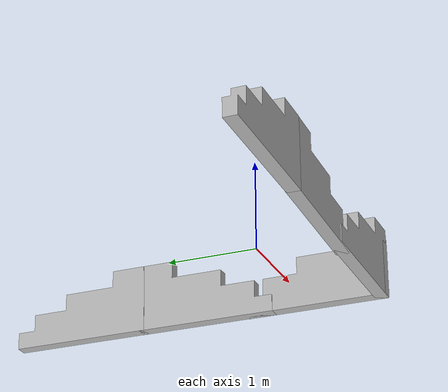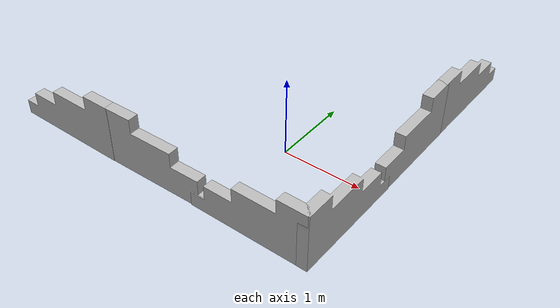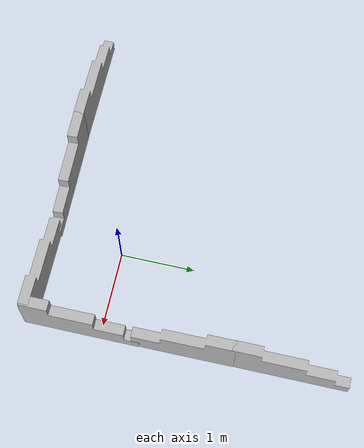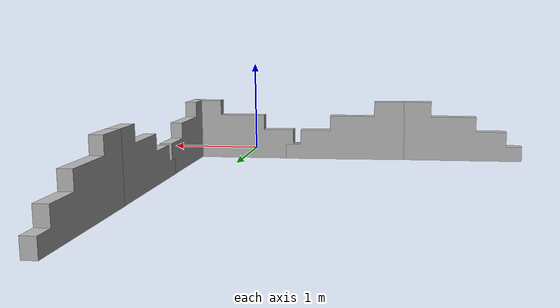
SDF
<?xml version='1.0'?>
<sdf version='1.7'>
  <model name='makefence'>
    <model name='block_wall'>
      <pose>0.442048 -1.01418 0 0 -0 0</pose>
      <static>1</static>
      <link name='blocks'>
        <collision name='collision'>
          <geometry>
            <mesh>
              <uri>model://drc_practice_block_wall/meshes/block_wall.dae</uri>
            </mesh>
          </geometry>
          <surface>
            <bounce>
              <restitution_coefficient>0</restitution_coefficient>
              <threshold>100000</threshold>
            </bounce>
            <friction>
              <ode>
                <mu>100</mu>
                <mu2>50</mu2>
              </ode>
            </friction>
            <contact>
              <ode>
                <soft_cfm>0</soft_cfm>
                <soft_erp>0.2</soft_erp>
                <max_vel>0</max_vel>
                <min_depth>0</min_depth>
              </ode>
            </contact>
          </surface>
        </collision>
        <visual name='visual'>
          <geometry>
            <mesh>
              <uri>model://drc_practice_block_wall/meshes/block_wall.dae</uri>
            </mesh>
          </geometry>
        </visual>
      </link>
    </model>
    <model name='block_wall_clone'>
      <pose>1.03036 -0.441285 0 0 0 -1.57363</pose>
      <static>1</static>
      <link name='blocks'>
        <collision name='collision'>
          <geometry>
            <mesh>
              <uri>model://drc_practice_block_wall/meshes/block_wall.dae</uri>
            </mesh>
          </geometry>
          <surface>
            <bounce>
              <restitution_coefficient>0</restitution_coefficient>
              <threshold>100000</threshold>
            </bounce>
            <friction>
              <ode>
                <mu>100</mu>
                <mu2>50</mu2>
              </ode>
            </friction>
            <contact>
              <ode>
                <soft_cfm>0</soft_cfm>
                <soft_erp>0.2</soft_erp>
                <max_vel>0</max_vel>
                <min_depth>0</min_depth>
              </ode>
            </contact>
          </surface>
        </collision>
        <visual name='visual'>
          <geometry>
            <mesh>
              <uri>model://drc_practice_block_wall/meshes/block_wall.dae</uri>
            </mesh>
          </geometry>
        </visual>
      </link>
    </model>
    <model name='block_wall_clone_0'>
      <pose>-1.13562 -1.01584 0 0 0 -3.12263</pose>
      <static>1</static>
      <link name='blocks'>
        <collision name='collision'>
          <geometry>
            <mesh>
              <uri>model://drc_practice_block_wall/meshes/block_wall.dae</uri>
            </mesh>
          </geometry>
          <surface>
            <bounce>
              <restitution_coefficient>0</restitution_coefficient>
              <threshold>100000</threshold>
            </bounce>
            <friction>
              <ode>
                <mu>100</mu>
                <mu2>50</mu2>
              </ode>
            </friction>
            <contact>
              <ode>
                <soft_cfm>0</soft_cfm>
                <soft_erp>0.2</soft_erp>
                <max_vel>0</max_vel>
                <min_depth>0</min_depth>
              </ode>
            </contact>
          </surface>
        </collision>
        <visual name='visual'>
          <geometry>
            <mesh>
              <uri>model://drc_practice_block_wall/meshes/block_wall.dae</uri>
            </mesh>
          </geometry>
        </visual>
      </link>
    </model>
    <model name='block_wall_clone_1'>
      <pose>-2.38746 -1.0306 0 0 -0 0</pose>
      <static>1</static>
      <link name='blocks'>
        <collision name='collision'>
          <geometry>
            <mesh>
              <uri>model://drc_practice_block_wall/meshes/block_wall.dae</uri>
            </mesh>
          </geometry>
          <surface>
            <bounce>
              <restitution_coefficient>0</restitution_coefficient>
              <threshold>100000</threshold>
            </bounce>
            <friction>
              <ode>
                <mu>100</mu>
                <mu2>50</mu2>
              </ode>
            </friction>
            <contact>
              <ode>
                <soft_cfm>0</soft_cfm>
                <soft_erp>0.2</soft_erp>
                <max_vel>0</max_vel>
                <min_depth>0</min_depth>
              </ode>
            </contact>
          </surface>
        </collision>
        <visual name='visual'>
          <geometry>
            <mesh>
              <uri>model://drc_practice_block_wall/meshes/block_wall.dae</uri>
            </mesh>
          </geometry>
        </visual>
      </link>
    </model>
    <model name='block_wall_clone_clone'>
      <pose>1.02654 1.13303 0 0 -0 1.57212</pose>
      <static>1</static>
      <link name='blocks'>
        <collision name='collision'>
          <geometry>
            <mesh>
              <uri>model://drc_practice_block_wall/meshes/block_wall.dae</uri>
            </mesh>
          </geometry>
          <surface>
            <bounce>
              <restitution_coefficient>0</restitution_coefficient>
              <threshold>100000</threshold>
            </bounce>
            <friction>
              <ode>
                <mu>100</mu>
                <mu2>50</mu2>
              </ode>
            </friction>
            <contact>
              <ode>
                <soft_cfm>0</soft_cfm>
                <soft_erp>0.2</soft_erp>
                <max_vel>0</max_vel>
                <min_depth>0</min_depth>
              </ode>
            </contact>
          </surface>
        </collision>
        <visual name='visual'>
          <geometry>
            <mesh>
              <uri>model://drc_practice_block_wall/meshes/block_wall.dae</uri>
            </mesh>
          </geometry>
        </visual>
      </link>
    </model>
    <model name='block_wall_clone_clone_0'>
      <pose>1.02412 2.36888 0 0 0 -1.57363</pose>
      <static>1</static>
      <link name='blocks'>
        <collision name='collision'>
          <geometry>
            <mesh>
              <uri>model://drc_practice_block_wall/meshes/block_wall.dae</uri>
            </mesh>
          </geometry>
          <surface>
            <bounce>
              <restitution_coefficient>0</restitution_coefficient>
              <threshold>100000</threshold>
            </bounce>
            <friction>
              <ode>
                <mu>100</mu>
                <mu2>50</mu2>
              </ode>
            </friction>
            <contact>
              <ode>
                <soft_cfm>0</soft_cfm>
                <soft_erp>0.2</soft_erp>
                <max_vel>0</max_vel>
                <min_depth>0</min_depth>
              </ode>
            </contact>
          </surface>
        </collision>
        <visual name='visual'>
          <geometry>
            <mesh>
              <uri>model://drc_practice_block_wall/meshes/block_wall.dae</uri>
            </mesh>
          </geometry>
        </visual>
      </link>
    </model>
    <static>0</static>
    <allow_auto_disable>1</allow_auto_disable>
  </model>
</sdf>
